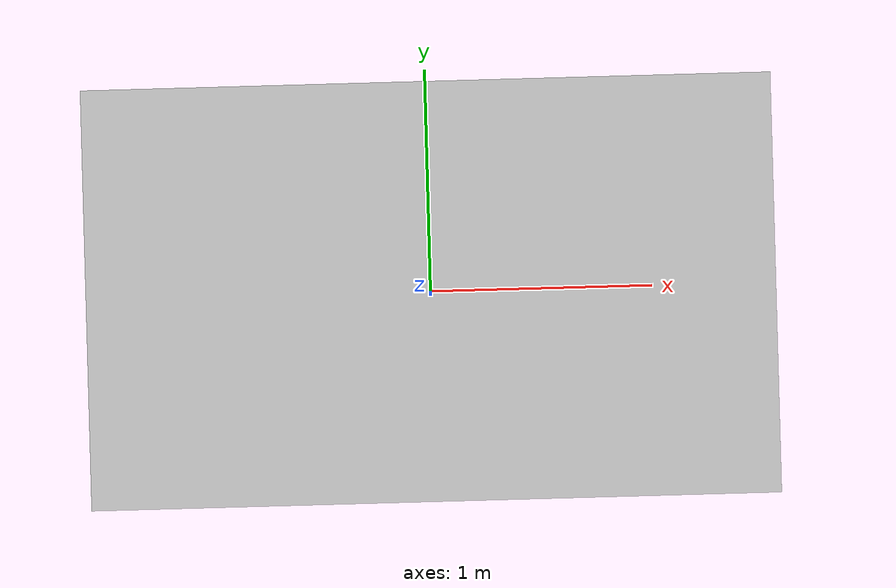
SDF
<?xml version="1.0" ?>
<sdf version="1.6">
  <model name="course">
    <static>true</static>
    <link name="course_link">
      <collision name="course_collision">
        <geometry>
          <plane>
            <normal>0 0 1</normal>
            <size>3.11914 1.9</size>
          </plane>
        </geometry>
        <surface>
          <friction>
            <ode>
              <mu>100</mu>
              <mu2>50</mu2>
            </ode>
          </friction>
        </surface>
      </collision>
      <visual name="course_visual">
        <cast_shadows>false</cast_shadows>
        <geometry>
	        <plane>
            <normal>0 0 1</normal>
            <size>3.11914 1.9</size>
          </plane>
        </geometry>
	      <material>
          <script>
            <uri>model://turtlebot3_autorace/course_real/materials/scripts</uri>
            <uri>model://turtlebot3_autorace/course_real/materials/textures</uri>
            <name>course</name>
          </script>
        </material>
      </visual>
    </link>
  </model>
</sdf>
